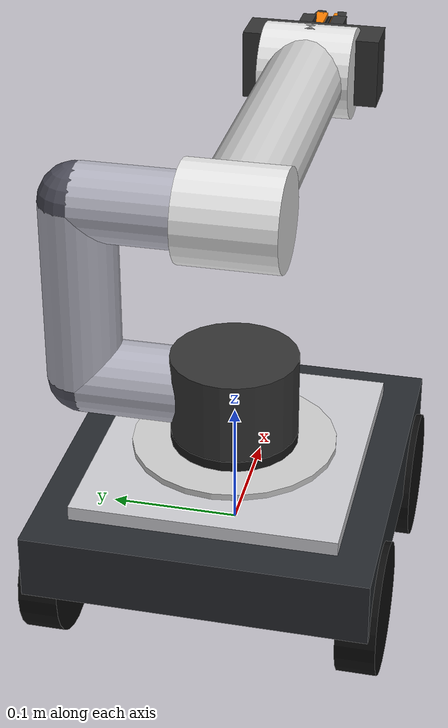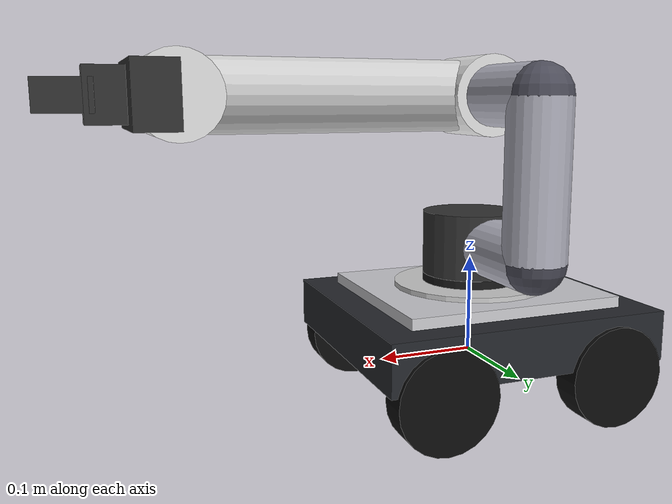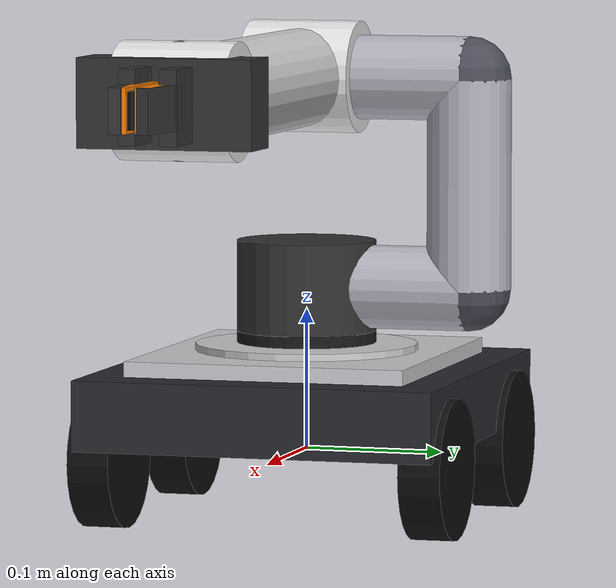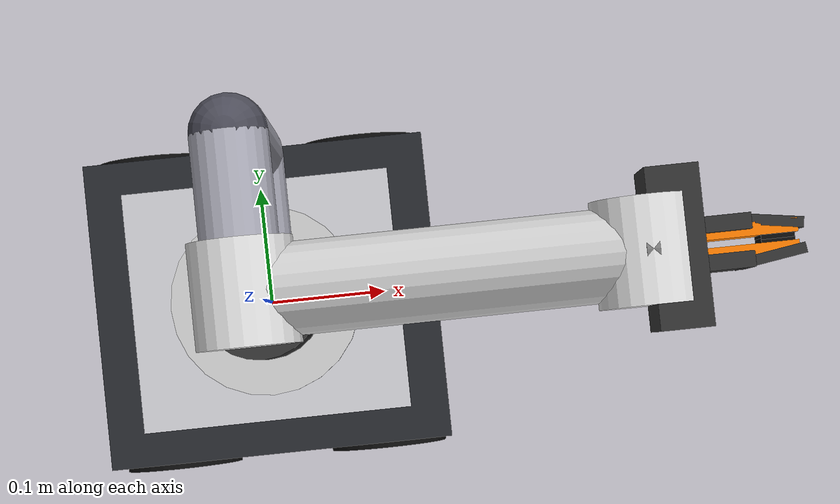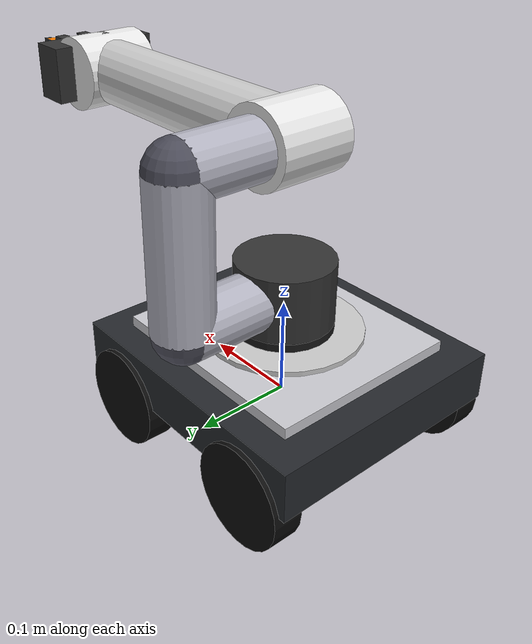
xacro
<?xml version="1.0"?>
<robot name="me332_mobile_manipulator" xmlns:xacro="http://www.ros.org/wiki/xacro">

  <xacro:arg name="controllers_yaml" default=""/>
  <xacro:property name="controllers_yaml_path" value="$(arg controllers_yaml)"/>

  <xacro:property name="PI" value="3.14159265359"/>
  <xacro:property name="PI_2" value="1.57079632679"/>

  <xacro:macro name="inertial_simple" params="mass ixx:=0.01 iyy:=0.01 izz:=0.01">
    <inertial>
      <mass value="${mass}"/>
      <origin xyz="0 0 0" rpy="0 0 0"/>
      <inertia ixx="${ixx}" ixy="0" ixz="0" iyy="${iyy}" iyz="0" izz="${izz}"/>
    </inertial>
  </xacro:macro>

  <xacro:property name="color_body"   value="0.15 0.16 0.18 1.0"/>
  <xacro:property name="color_panel"  value="0.80 0.80 0.82 1.0"/>
  <xacro:property name="color_wheel"  value="0.05 0.05 0.05 1.0"/>
  <xacro:property name="color_joint"  value="0.95 0.55 0.10 1.0"/>

  <xacro:property name="chassis_L" value="0.29"/>
  <xacro:property name="chassis_W" value="0.26"/>
  <xacro:property name="chassis_H" value="0.05"/>
  <xacro:property name="wheel_r" value="0.05"/>
  <xacro:property name="wheel_w" value="0.03"/>
  <xacro:property name="wheel_sep" value="0.24"/>
  <xacro:property name="wheel_x_offset" value="0.09"/>

  <link name="base_footprint"/>
  <joint name="base_footprint_joint" type="fixed">
    <parent link="base_footprint"/>
    <child link="base_link"/>
    <origin xyz="0 0 0" rpy="0 0 0"/>
  </joint>

  <link name="base_link">
    <xacro:inertial_simple mass="60.0" ixx="0.25" iyy="0.25" izz="0.5"/>
    <visual>
      <origin xyz="0 0 ${0.5*chassis_H + 0.010}" rpy="0 0 0"/>
      <geometry><box size="${chassis_L} ${chassis_W} ${chassis_H}"/></geometry>
      <material name="base_body"><color rgba="${color_body}"/></material>
    </visual>
    <visual>
      <origin xyz="0 0 ${0.5*chassis_H + 0.040}" rpy="0 0 0"/>
      <geometry><box size="${chassis_L*0.78} ${chassis_W*0.78} 0.012"/></geometry>
      <material name="base_panel"><color rgba="${color_panel}"/></material>
    </visual>
    <collision>
      <origin xyz="0 0 ${0.5*chassis_H + 0.010}" rpy="0 0 0"/>
      <geometry><box size="${chassis_L} ${chassis_W} ${chassis_H}"/></geometry>
    </collision>
  </link>

  <xacro:macro name="wheel_unit" params="prefix location_prefix x_pos reflect mu2_val:=200.0">
    <link name="${prefix}_wheel_link">
      <xacro:inertial_simple mass="1.0" ixx="0.0015" iyy="0.0015" izz="0.0015"/>
      <visual>
        <origin xyz="0 0 0" rpy="${PI_2} 0 0"/>
        <geometry><cylinder radius="${wheel_r}" length="${wheel_w}"/></geometry>
        <material name="wheel_mat_${prefix}"><color rgba="${color_wheel}"/></material>
      </visual>
      <collision>
        <origin xyz="0 0 0" rpy="${PI_2} 0 0"/>
        <geometry><cylinder radius="${wheel_r}" length="${wheel_w}"/></geometry>
      </collision>
    </link>

    <joint name="${prefix}_wheel_joint" type="continuous">
      <parent link="base_link"/>
      <child link="${prefix}_wheel_link"/>
      <origin xyz="${x_pos} ${reflect * wheel_sep/2} 0" rpy="0 0 0"/>
      <axis xyz="0 1 0"/>
      <limit effort="500.0" velocity="5.0"/>
      <dynamics damping="0.3" friction="0.3"/>
    </joint>

    <gazebo reference="${prefix}_wheel_link">
      <mu1>100.0</mu1>
      <mu2>${mu2_val}</mu2>
      <kp>10000000.0</kp>
      <kd>1.0</kd>
      <fdir1>1 0 0</fdir1>
      <minDepth>0.001</minDepth>
      <maxVel>0.1</maxVel>
      <material>Gazebo/DarkGrey</material>
    </gazebo>
  </xacro:macro>

  <xacro:wheel_unit prefix="front_left"  location_prefix="front" x_pos="${wheel_x_offset}"  reflect="1"  mu2_val="0.1"/>
  <xacro:wheel_unit prefix="front_right" location_prefix="front" x_pos="${wheel_x_offset}"  reflect="-1" mu2_val="0.1"/>
  <xacro:wheel_unit prefix="rear_left"   location_prefix="rear"  x_pos="-${wheel_x_offset}" reflect="1"  mu2_val="200.0"/>
  <xacro:wheel_unit prefix="rear_right"  location_prefix="rear"  x_pos="-${wheel_x_offset}" reflect="-1" mu2_val="200.0"/>

  <link name="arm_base_link">
    <xacro:inertial_simple mass="1.0" ixx="0.002" iyy="0.002" izz="0.004"/>
    <visual>
      <origin xyz="0 0 0.0075" rpy="0 0 0"/>
      <geometry><cylinder radius="0.08" length="0.015"/></geometry>
      <material name="arm_base_mat"><color rgba="0.8 0.8 0.8 1"/></material>
    </visual>
  </link>

  <joint name="arm_mount_joint" type="fixed">
    <parent link="base_link"/>
    <child link="arm_base_link"/>
    <origin xyz="0 0 ${chassis_H + 0.011}" rpy="0 0 0"/>
  </joint>

  <joint name="joint1" type="revolute">
    <parent link="arm_base_link"/>
    <child link="link1"/>
    <origin xyz="0 0 0.05" rpy="0 0 0"/>
    <axis xyz="0 0 1"/>
    <limit lower="-${PI}" upper="${PI}" effort="30.0" velocity="1.5"/>
    <dynamics damping="1.0" friction="0.2"/>
  </joint>

  <link name="link1">
    <xacro:inertial_simple mass="2.0" ixx="0.008" iyy="0.008" izz="0.005"/>
    <visual>
      <origin xyz="0 0 0.0065" rpy="0 0 0"/>
      <geometry>
        <cylinder radius="0.05" length="0.065"/>
      </geometry>
      <material name="pipe_base">
        <color rgba="0.2 0.2 0.2 1.0"/>
      </material>
    </visual>
    <visual>
      <origin xyz="0 0.06 0.0065" rpy="${PI_2} 0 0"/>
      <geometry><cylinder radius="0.03" length="0.12"/></geometry>
      <material name="pipe_grey"><color rgba="0.7 0.7 0.75 1.0"/></material>
    </visual>
    <visual>
      <origin xyz="0 0.12 0.0065" rpy="0 0 0"/>
      <geometry><sphere radius="0.03"/></geometry>
      <material name="pipe_fitting"><color rgba="0.3 0.3 0.35 1.0"/></material>
    </visual>
    <visual>
      <origin xyz="0 0.12 0.0815" rpy="0 0 0"/>
      <geometry><cylinder radius="0.03" length="0.15"/></geometry>
      <material name="pipe_grey"/>
    </visual>
    <visual>
      <origin xyz="0 0.12 0.1565" rpy="0 0 0"/>
      <geometry><sphere radius="0.03"/></geometry>
      <material name="pipe_fitting"/>
    </visual>
    <visual>
      <origin xyz="0 0.06 0.1565" rpy="${PI_2} 0 0"/>
      <geometry><cylinder radius="0.03" length="0.12"/></geometry>
      <material name="pipe_grey"/>
    </visual>
    <visual>
      <origin xyz="0 0 0.1565" rpy="${PI_2} 0 0"/>
      <geometry><cylinder radius="0.03" length="0.05"/></geometry>
      <material name="pipe_head"><color rgba="0.2 0.2 0.2 1.0"/></material>
    </visual>
  </link>

  <link name="lidar_link">
    <xacro:inertial_simple mass="0.1" ixx="0.0001" iyy="0.0001" izz="0.0001"/>
    <visual>
      <origin xyz="0 0 0" rpy="0 0 0"/>
      <geometry>
        <cylinder radius="0.05" length="0.00825"/>
      </geometry>
      <material name="lidar_embedded">
        <color rgba="0.1 0.1 0.1 1.0"/>
      </material>
    </visual>
  </link>

  <joint name="lidar_mount_joint" type="fixed">
    <parent link="base_link"/>
    <child link="lidar_link"/>
    <origin xyz="0 0 0.0807" rpy="0 0 0"/>
  </joint>

  <joint name="joint2" type="revolute">
    <parent link="link1"/>
    <child link="link2"/>
    <origin xyz="0 0 0.1565" rpy="${PI_2} 0 0"/>
    <axis xyz="0 0 1"/>
    <limit lower="-0.8" upper="${PI_2}" effort="20.0" velocity="1.5"/>
    <dynamics damping="15.0" friction="5.0"/>
  </joint>

  <link name="link2">
    <xacro:inertial_simple mass="0.7" ixx="0.001" iyy="0.006" izz="0.006"/>
    <visual>
      <origin xyz="0.15 0 0" rpy="0 ${PI_2} 0"/>
      <geometry><cylinder radius="0.035" length="0.30"/></geometry>
      <material name="link2_mat"><color rgba="0.8 0.8 0.8 1"/></material>
    </visual>
    <visual>
      <origin xyz="0 0 0" rpy="0 0 0"/>
      <geometry><cylinder radius="0.04" length="0.08"/></geometry>
      <material name="link2_flange_root"><color rgba="0.90 0.90 0.90 1.0"/></material>
    </visual>
    <visual>
      <origin xyz="0.30 0 0" rpy="0 0 0"/>
      <geometry><cylinder radius="0.04" length="0.08"/></geometry>
      <material name="link2_flange_tip"><color rgba="0.90 0.90 0.90 1.0"/></material>
    </visual>
    <collision>
      <origin xyz="0.15 0 0" rpy="0 ${PI_2} 0"/>
      <geometry><cylinder radius="0.035" length="0.25"/></geometry>
    </collision>
  </link>

  <joint name="joint3" type="revolute">
    <parent link="link2"/>
    <child link="palm_link"/>
    <origin xyz="0.30 0 0" rpy="${PI_2} 0 0"/>
    <axis xyz="0 1 0"/>
    <limit lower="-${PI_2}" upper="0.0" effort="10.0" velocity="1.5"/>
    <dynamics damping="1.0" friction="0.2"/>
  </joint>

   <link name="palm_link">
    <xacro:inertial_simple mass="0.8" ixx="0.001" iyy="0.001" izz="0.001"/>
    <visual>
      <origin xyz="0.02 0 0" rpy="0 0 0"/>
      <geometry><box size="0.04 0.12 0.06"/></geometry>
      <material name="dark_grey"><color rgba="0.2 0.2 0.2 1.0"/></material>
    </visual>
    <visual>
      <origin xyz="0 0 0" rpy="0 1.5708 0"/>
      <geometry><cylinder radius="0.04" length="0.01"/></geometry>
      <material name="metal_grey"><color rgba="0.5 0.5 0.5 1.0"/></material>
    </visual>
    <collision>
      <origin xyz="0.02 0 0" rpy="0 0 0"/>
      <geometry><box size="0.04 0.12 0.06"/></geometry>
    </collision>
  </link>

  <xacro:macro name="industrial_wrench_finger" params="suffix reflect color">
    <link name="finger${suffix}_link">
      <xacro:inertial_simple mass="0.3" ixx="0.0002" iyy="0.0002" izz="0.0002"/>
      <visual>
        <origin xyz="0.035 0 0" rpy="0 0 0"/>
        <geometry><box size="0.07 0.01 0.03"/></geometry>
        <material name="${color}"><color rgba="1.0 0.5 0.0 1.0"/></material>
      </visual>
      <visual>
        <origin xyz="0.015 ${reflect * 0.006} 0" rpy="0 0 0"/>
        <geometry><box size="0.04 0.012 0.05"/></geometry>
        <material name="dark_grey"/>
      </visual>
      <visual>
        <origin xyz="0.05 ${reflect * 0.005} 0" rpy="0 0 ${reflect * -0.15}"/>
        <geometry><box size="0.05 0.008 0.03"/></geometry>
        <material name="dark_grey"/>
      </visual>
      <visual>
        <origin xyz="0.055 ${reflect * -0.006} 0" rpy="0 0 0"/>
        <geometry><box size="0.025 0.005 0.025"/></geometry>
        <material name="rubber_black"><color rgba="0.05 0.05 0.05 1.0"/></material>
      </visual>

      <collision>
        <origin xyz="0.035 ${reflect * -0.005} 0" rpy="0 0 0"/>
        <geometry><box size="0.07 0.01 0.04"/></geometry>
      </collision>
    </link>

    <joint name="finger${suffix}_joint1" type="prismatic">
      <parent link="palm_link"/>
      <child link="finger${suffix}_link"/>
      <origin xyz="0.04 ${reflect * 0.008} 0" rpy="0 0 0"/>
      <axis xyz="0 1 0"/>
      <xacro:if value="${reflect == 1}">
        <limit lower="-0.005" upper="0.04" effort="300.0" velocity="0.1"/>
      </xacro:if>
      <xacro:if value="${reflect == -1}">
        <limit lower="-0.04" upper="0.005" effort="300.0" velocity="0.1"/>
      </xacro:if>
      <dynamics damping="10.0" friction="5.0"/>
    </joint>

    <gazebo reference="finger${suffix}_link">
      <mu1>100.0</mu1>
      <mu2>100.0</mu2>
      <kp>10000.0</kp>
      <kd>100.0</kd>
      <minDepth>0.05</minDepth>
      <maxVel>0.1</maxVel>
      <material>Gazebo/Orange</material>
    </gazebo>
  </xacro:macro>
  <xacro:industrial_wrench_finger suffix="1" reflect="1"  color="ind_orange"/>
  <xacro:industrial_wrench_finger suffix="2" reflect="-1" color="ind_orange"/>

  <ros2_control name="me332_mm_system" type="system">
    <hardware>
      <plugin>gazebo_ros2_control/GazeboSystem</plugin>
    </hardware>

    <joint name="joint1">
      <command_interface name="position"/>
      <state_interface name="position"/><state_interface name="velocity"/>
    </joint>

    <joint name="joint2">
      <command_interface name="position">
        <param name="initial_value">1.57</param>
      </command_interface>
      <state_interface name="position">
        <param name="initial_value">1.57</param>
      </state_interface>
      <state_interface name="velocity"/>
    </joint>

    <joint name="joint3">
      <command_interface name="position"/>
      <state_interface name="position"/><state_interface name="velocity"/>
    </joint>

    <joint name="finger1_joint1">
      <command_interface name="position"/>
      <state_interface name="position"/><state_interface name="velocity"/>
    </joint>
    <joint name="finger2_joint1">
      <command_interface name="position"/>
      <state_interface name="position"/><state_interface name="velocity"/>
    </joint>
  </ros2_control>

  <gazebo>
    <plugin name="gazebo_ros2_control" filename="libgazebo_ros2_control.so">
      <xacro:if value="${controllers_yaml_path != ''}">
          <parameters>${controllers_yaml_path}</parameters>
      </xacro:if>
    </plugin>
  </gazebo>

  <gazebo reference="lidar_link">
    <sensor name="embedded_lidar" type="ray">
      <pose>0 0 0 0 0 0</pose>
      <always_on>true</always_on>
      <visualize>false</visualize>
      <update_rate>20</update_rate>
      <ray>
        <scan>
          <horizontal><samples>360</samples><resolution>1</resolution><min_angle>-3.14159</min_angle><max_angle>3.14159</max_angle></horizontal>
        </scan>
        <range><min>0.20</min><max>10.0</max><resolution>0.01</resolution></range>
      </ray>
      <plugin name="scan" filename="libgazebo_ros_ray_sensor.so">
        <ros><remapping>~/out:=scan</remapping></ros>
        <output_type>sensor_msgs/LaserScan</output_type>
        <frame_name>lidar_link</frame_name>
      </plugin>
    </sensor>
    <material>Gazebo/Grey</material>
  </gazebo>

  <gazebo>
    <plugin name="gazebo_grasp_fix" filename="libgazebo_grasp_fix.so">
      <arm>
        <arm_name>me332_mobile_manipulator</arm_name>
        <palm_link>palm_link</palm_link>
        <gripper_link>finger1_link</gripper_link>
        <gripper_link>finger2_link</gripper_link>
      </arm>
      <forces_angle_tolerance>100</forces_angle_tolerance>
      <update_rate>150</update_rate>
      <grip_count_threshold>2</grip_count_threshold>
      <max_grip_count>8</max_grip_count>
      <release_tolerance>0.005</release_tolerance>
      <disable_collisions_on_attach>true</disable_collisions_on_attach>
      <contact_topic>__default_topic__</contact_topic>
    </plugin>
  </gazebo>

    <gazebo reference="base_link">
    <sensor name="imu_sensor" type="imu">
      <plugin filename="libgazebo_ros_imu_sensor.so" name="imu_plugin">
        <ros>
          <remapping>~/out:=imu</remapping>
        </ros>
        <initial_orientation_as_reference>false</initial_orientation_as_reference>
      </plugin>
      <always_on>true</always_on>
      <update_rate>100</update_rate>
      <visualize>true</visualize>
    </sensor>
  </gazebo>

  <gazebo reference="base_link">

    <material>Gazebo/DarkGrey</material>
  </gazebo>

  <gazebo reference="arm_base_link">
    <material>Gazebo/Grey</material>
  </gazebo>

  <gazebo reference="link1">
    <material>Gazebo/Grey</material>
  </gazebo>

  <gazebo reference="link2">
    <material>Gazebo/White</material>
  </gazebo>

  <gazebo reference="palm_link">
    <material>Gazebo/DarkGrey</material>
  </gazebo>
  <gazebo>
    <plugin name="diff_drive" filename="libgazebo_ros_diff_drive.so">
      <ros>
        <remapping>/cmd_vel:=/base_controller/cmd_vel_unstamped</remapping>
        <remapping>/odom:=/base_controller/odom</remapping>
      </ros>

      <left_joint>rear_left_wheel_joint</left_joint>
      <right_joint>rear_right_wheel_joint</right_joint>

      <wheel_separation>${wheel_sep}</wheel_separation>
      <wheel_diameter>${2*wheel_r}</wheel_diameter>

      <max_wheel_torque>20</max_wheel_torque>
      <max_wheel_acceleration>1.0</max_wheel_acceleration>

      <publish_odom>true</publish_odom>
      <publish_odom_tf>true</publish_odom_tf>
      <publish_wheel_tf>false</publish_wheel_tf>

      <odometry_frame>odom</odometry_frame>
      <robot_base_frame>base_footprint</robot_base_frame>
    </plugin>
  </gazebo>
  <gazebo>
    <plugin name="wheel_joint_state_publisher" filename="libgazebo_ros_joint_state_publisher.so">
      <ros>
        <remapping>~/out:=joint_states</remapping>
      </ros>
      <update_rate>30</update_rate>
      <joint_name>front_left_wheel_joint</joint_name>
      <joint_name>front_right_wheel_joint</joint_name>
      <joint_name>rear_left_wheel_joint</joint_name>
      <joint_name>rear_right_wheel_joint</joint_name>
    </plugin>
  </gazebo>
</robot>
